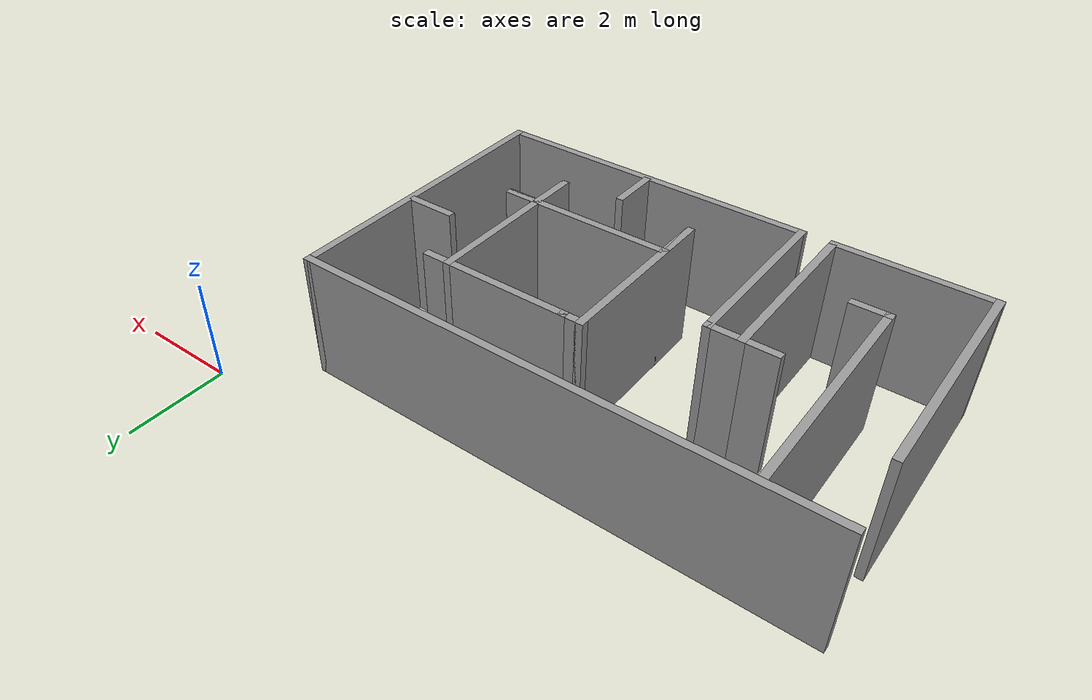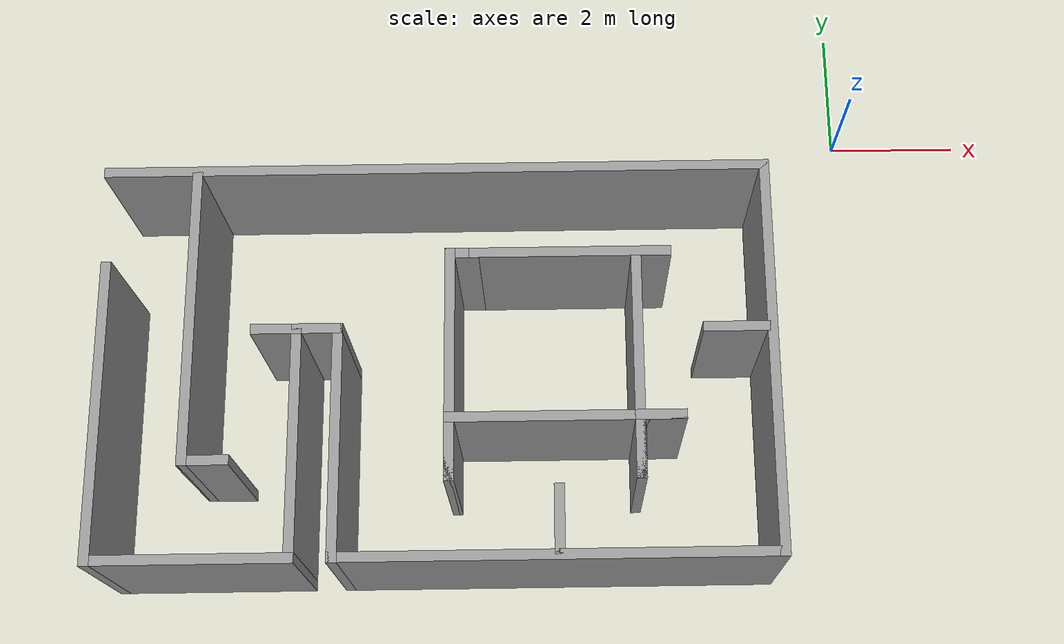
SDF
<?xml version='1.0'?>
<sdf version='1.7'>
  <model name='inroom'>
    <pose>-5.7025 -3.6025 0 0 -0 0</pose>
    <link name='Wall_1'>
      <collision name='Wall_1_Collision'>
        <geometry>
          <box>
            <size>10 0.15 2.5</size>
          </box>
        </geometry>
        <pose>0 0 1.25 0 -0 0</pose>
      </collision>
      <visual name='Wall_1_Visual'>
        <pose>0 0 1.25 0 -0 0</pose>
        <geometry>
          <box>
            <size>10 0.15 2.5</size>
          </box>
        </geometry>
        <material>
          <script>
            <uri>file://media/materials/scripts/gazebo.material</uri>
            <name>Gazebo/Grey</name>
          </script>
          <ambient>1 1 1 1</ambient>
        </material>
        <meta>
          <layer>0</layer>
        </meta>
      </visual>
      <pose>-0.7025 2.3225 0 0 -0 0</pose>
    </link>
    <link name='Wall_10'>
      <collision name='Wall_10_Collision'>
        <geometry>
          <box>
            <size>4.5 0.15 2.5</size>
          </box>
        </geometry>
        <pose>0 0 1.25 0 -0 0</pose>
      </collision>
      <visual name='Wall_10_Visual'>
        <pose>0 0 1.25 0 -0 0</pose>
        <geometry>
          <box>
            <size>4.5 0.15 2.5</size>
          </box>
        </geometry>
        <material>
          <script>
            <uri>file://media/materials/scripts/gazebo.material</uri>
            <name>Gazebo/Grey</name>
          </script>
          <ambient>1 1 1 1</ambient>
        </material>
        <meta>
          <layer>0</layer>
        </meta>
      </visual>
      <pose>-4.2975 0.0575 0 0 -0 -1.5708</pose>
    </link>
    <link name='Wall_11'>
      <collision name='Wall_11_Collision'>
        <geometry>
          <box>
            <size>0.75 0.15 2.5</size>
          </box>
        </geometry>
        <pose>0 0 1.25 0 -0 0</pose>
      </collision>
      <visual name='Wall_11_Visual'>
        <pose>0 0 1.25 0 -0 0</pose>
        <geometry>
          <box>
            <size>0.75 0.15 2.5</size>
          </box>
        </geometry>
        <material>
          <script>
            <uri>file://media/materials/scripts/gazebo.material</uri>
            <name>Gazebo/Grey</name>
          </script>
          <ambient>1 1 1 1</ambient>
        </material>
        <meta>
          <layer>0</layer>
        </meta>
      </visual>
      <pose>-3.9975 -2.1175 0 0 -0 0</pose>
    </link>
    <link name='Wall_13'>
      <collision name='Wall_13_Collision'>
        <geometry>
          <box>
            <size>0.75 0.15 2.5</size>
          </box>
        </geometry>
        <pose>0 0 1.25 0 -0 0</pose>
      </collision>
      <visual name='Wall_13_Visual'>
        <pose>0 0 1.25 0 -0 0</pose>
        <geometry>
          <box>
            <size>0.75 0.15 2.5</size>
          </box>
        </geometry>
        <material>
          <script>
            <uri>file://media/materials/scripts/gazebo.material</uri>
            <name>Gazebo/Grey</name>
          </script>
          <ambient>1 1 1 1</ambient>
        </material>
        <meta>
          <layer>0</layer>
        </meta>
      </visual>
      <pose>-3.0275 -0.1775 0 0 -0 3.14159</pose>
    </link>
    <link name='Wall_15'>
      <collision name='Wall_15_Collision'>
        <geometry>
          <box>
            <size>1 0.15 2.5</size>
          </box>
        </geometry>
        <pose>0 0 1.25 0 -0 0</pose>
      </collision>
      <visual name='Wall_15_Visual'>
        <pose>0 0 1.25 0 -0 0</pose>
        <geometry>
          <box>
            <size>1 0.15 2.5</size>
          </box>
        </geometry>
        <material>
          <script>
            <uri>file://media/materials/scripts/gazebo.material</uri>
            <name>Gazebo/Grey</name>
          </script>
          <ambient>1 1 1 1</ambient>
        </material>
        <meta>
          <layer>0</layer>
        </meta>
      </visual>
      <pose>1.0725 -3.0225 0 0 -0 1.5708</pose>
    </link>
    <link name='Wall_17'>
      <collision name='Wall_17_Collision'>
        <geometry>
          <box>
            <size>3 0.15 2.5</size>
          </box>
        </geometry>
        <pose>0 0 1.25 0 -0 0</pose>
      </collision>
      <visual name='Wall_17_Visual'>
        <pose>0 0 1.25 0 -0 0</pose>
        <geometry>
          <box>
            <size>3 0.15 2.5</size>
          </box>
        </geometry>
        <material>
          <script>
            <uri>file://media/materials/scripts/gazebo.material</uri>
            <name>Gazebo/Grey</name>
          </script>
          <ambient>1 1 1 1</ambient>
        </material>
        <meta>
          <layer>0</layer>
        </meta>
      </visual>
      <pose>1.2775 0.9625 0 0 -0 3.14159</pose>
    </link>
    <link name='Wall_18'>
      <collision name='Wall_18_Collision'>
        <geometry>
          <box>
            <size>0.5 0.15 2.5</size>
          </box>
        </geometry>
        <pose>0 0 1.25 0 -0 0</pose>
      </collision>
      <visual name='Wall_18_Visual'>
        <pose>0 0 1.25 0 -0 0</pose>
        <geometry>
          <box>
            <size>0.5 0.15 2.5</size>
          </box>
        </geometry>
        <material>
          <script>
            <uri>file://media/materials/scripts/gazebo.material</uri>
            <name>Gazebo/Grey</name>
          </script>
          <ambient>1 1 1 1</ambient>
        </material>
        <meta>
          <layer>0</layer>
        </meta>
      </visual>
      <pose>-0.3225 0.9625 0 0 -0 3.14159</pose>
    </link>
    <link name='Wall_19'>
      <collision name='Wall_19_Collision'>
        <geometry>
          <box>
            <size>3.5 0.15 2.5</size>
          </box>
        </geometry>
        <pose>0 0 1.25 0 -0 0</pose>
      </collision>
      <visual name='Wall_19_Visual'>
        <pose>0 0 1.25 0 -0 0</pose>
        <geometry>
          <box>
            <size>3.5 0.15 2.5</size>
          </box>
        </geometry>
        <material>
          <script>
            <uri>file://media/materials/scripts/gazebo.material</uri>
            <name>Gazebo/Grey</name>
          </script>
          <ambient>1 1 1 1</ambient>
        </material>
        <meta>
          <layer>0</layer>
        </meta>
      </visual>
      <pose>-0.497499 -0.7125 0 0 -0 -1.5708</pose>
    </link>
    <link name='Wall_2'>
      <collision name='Wall_2_Collision'>
        <geometry>
          <box>
            <size>6 0.15 2.5</size>
          </box>
        </geometry>
        <pose>0 0 1.25 0 -0 0</pose>
      </collision>
      <visual name='Wall_2_Visual'>
        <pose>0 0 1.25 0 -0 0</pose>
        <geometry>
          <box>
            <size>6 0.15 2.5</size>
          </box>
        </geometry>
        <material>
          <script>
            <uri>file://media/materials/scripts/gazebo.material</uri>
            <name>Gazebo/Grey</name>
          </script>
          <ambient>1 1 1 1</ambient>
        </material>
        <meta>
          <layer>0</layer>
        </meta>
      </visual>
      <pose>4.2225 -0.6025 0 0 -0 -1.5708</pose>
    </link>
    <link name='Wall_20'>
      <collision name='Wall_20_Collision'>
        <geometry>
          <box>
            <size>1 0.15 2.5</size>
          </box>
        </geometry>
        <pose>0 0 1.25 0 -0 0</pose>
      </collision>
      <visual name='Wall_20_Visual'>
        <pose>0 0 1.25 0 -0 0</pose>
        <geometry>
          <box>
            <size>1 0.15 2.5</size>
          </box>
        </geometry>
        <material>
          <script>
            <uri>file://media/materials/scripts/gazebo.material</uri>
            <name>Gazebo/Grey</name>
          </script>
          <ambient>1 1 1 1</ambient>
        </material>
        <meta>
          <layer>0</layer>
        </meta>
      </visual>
      <pose>-0.497499 -1.9625 0 0 -0 1.5708</pose>
    </link>
    <link name='Wall_21'>
      <collision name='Wall_21_Collision'>
        <geometry>
          <box>
            <size>3.5 0.15 2.5</size>
          </box>
        </geometry>
        <pose>0 0 1.25 0 -0 0</pose>
      </collision>
      <visual name='Wall_21_Visual'>
        <pose>0 0 1.25 0 -0 0</pose>
        <geometry>
          <box>
            <size>3.5 0.15 2.5</size>
          </box>
        </geometry>
        <material>
          <script>
            <uri>file://media/materials/scripts/gazebo.material</uri>
            <name>Gazebo/Grey</name>
          </script>
          <ambient>1 1 1 1</ambient>
        </material>
        <meta>
          <layer>0</layer>
        </meta>
      </visual>
      <pose>1.1775 -1.5375 0 0 -0 0</pose>
    </link>
    <link name='Wall_22'>
      <collision name='Wall_22_Collision'>
        <geometry>
          <box>
            <size>0.75 0.15 2.5</size>
          </box>
        </geometry>
        <pose>0 0 1.25 0 -0 0</pose>
      </collision>
      <visual name='Wall_22_Visual'>
        <pose>0 0 1.25 0 -0 0</pose>
        <geometry>
          <box>
            <size>0.75 0.15 2.5</size>
          </box>
        </geometry>
        <material>
          <script>
            <uri>file://media/materials/scripts/gazebo.material</uri>
            <name>Gazebo/Grey</name>
          </script>
          <ambient>1 1 1 1</ambient>
        </material>
        <meta>
          <layer>0</layer>
        </meta>
      </visual>
      <pose>2.5525 -1.5375 0 0 -0 3.14159</pose>
    </link>
    <link name='Wall_23'>
      <collision name='Wall_23_Collision'>
        <geometry>
          <box>
            <size>1 0.15 2.5</size>
          </box>
        </geometry>
        <pose>0 0 1.25 0 -0 0</pose>
      </collision>
      <visual name='Wall_23_Visual'>
        <pose>0 0 1.25 0 -0 0</pose>
        <geometry>
          <box>
            <size>1 0.15 2.5</size>
          </box>
        </geometry>
        <material>
          <script>
            <uri>file://media/materials/scripts/gazebo.material</uri>
            <name>Gazebo/Grey</name>
          </script>
          <ambient>1 1 1 1</ambient>
        </material>
        <meta>
          <layer>0</layer>
        </meta>
      </visual>
      <pose>2.2525 -1.9625 0 0 -0 -1.5708</pose>
    </link>
    <link name='Wall_24'>
      <collision name='Wall_24_Collision'>
        <geometry>
          <box>
            <size>3.5 0.15 2.5</size>
          </box>
        </geometry>
        <pose>0 0 1.25 0 -0 0</pose>
      </collision>
      <visual name='Wall_24_Visual'>
        <pose>0 0 1.25 0 -0 0</pose>
        <geometry>
          <box>
            <size>3.5 0.15 2.5</size>
          </box>
        </geometry>
        <material>
          <script>
            <uri>file://media/materials/scripts/gazebo.material</uri>
            <name>Gazebo/Grey</name>
          </script>
          <ambient>1 1 1 1</ambient>
        </material>
        <meta>
          <layer>0</layer>
        </meta>
      </visual>
      <pose>2.2525 -0.7125 0 0 -0 1.5708</pose>
    </link>
    <link name='Wall_26'>
      <collision name='Wall_26_Collision'>
        <geometry>
          <box>
            <size>1 0.15 2.5</size>
          </box>
        </geometry>
        <pose>0 0 1.25 0 -0 0</pose>
      </collision>
      <visual name='Wall_26_Visual'>
        <pose>0 0 1.25 0 -0 0</pose>
        <geometry>
          <box>
            <size>1 0.15 2.5</size>
          </box>
        </geometry>
        <material>
          <script>
            <uri>file://media/materials/scripts/gazebo.material</uri>
            <name>Gazebo/Grey</name>
          </script>
          <ambient>1 1 1 1</ambient>
        </material>
        <meta>
          <layer>0</layer>
        </meta>
      </visual>
      <pose>3.7075 -0.2275 0 0 -0 3.14159</pose>
    </link>
    <link name='Wall_3'>
      <collision name='Wall_3_Collision'>
        <geometry>
          <box>
            <size>6.5 0.15 2.5</size>
          </box>
        </geometry>
        <pose>0 0 1.25 0 -0 0</pose>
      </collision>
      <visual name='Wall_3_Visual'>
        <pose>0 0 1.25 0 -0 0</pose>
        <geometry>
          <box>
            <size>6.5 0.15 2.5</size>
          </box>
        </geometry>
        <material>
          <script>
            <uri>file://media/materials/scripts/gazebo.material</uri>
            <name>Gazebo/Grey</name>
          </script>
          <ambient>1 1 1 1</ambient>
        </material>
        <meta>
          <layer>0</layer>
        </meta>
      </visual>
      <pose>1.0475 -3.5275 0 0 -0 3.14159</pose>
    </link>
    <link name='Wall_4'>
      <collision name='Wall_4_Collision'>
        <geometry>
          <box>
            <size>3.5 0.15 2.5</size>
          </box>
        </geometry>
        <pose>0 0 1.25 0 -0 0</pose>
      </collision>
      <visual name='Wall_4_Visual'>
        <pose>0 0 1.25 0 -0 0</pose>
        <geometry>
          <box>
            <size>3.5 0.15 2.5</size>
          </box>
        </geometry>
        <material>
          <script>
            <uri>file://media/materials/scripts/gazebo.material</uri>
            <name>Gazebo/Grey</name>
          </script>
          <ambient>1 1 1 1</ambient>
        </material>
        <meta>
          <layer>0</layer>
        </meta>
      </visual>
      <pose>-2.1275 -1.8525 0 0 -0 1.5708</pose>
    </link>
    <link name='Wall_5'>
      <collision name='Wall_5_Collision'>
        <geometry>
          <box>
            <size>0.75 0.15 2.5</size>
          </box>
        </geometry>
        <pose>0 0 1.25 0 -0 0</pose>
      </collision>
      <visual name='Wall_5_Visual'>
        <pose>0 0 1.25 0 -0 0</pose>
        <geometry>
          <box>
            <size>0.75 0.15 2.5</size>
          </box>
        </geometry>
        <material>
          <script>
            <uri>file://media/materials/scripts/gazebo.material</uri>
            <name>Gazebo/Grey</name>
          </script>
          <ambient>1 1 1 1</ambient>
        </material>
        <meta>
          <layer>0</layer>
        </meta>
      </visual>
      <pose>-2.4275 -0.1775 0 0 -0 3.14159</pose>
    </link>
    <link name='Wall_6'>
      <collision name='Wall_6_Collision'>
        <geometry>
          <box>
            <size>3.5 0.15 2.5</size>
          </box>
        </geometry>
        <pose>0 0 1.25 0 -0 0</pose>
      </collision>
      <visual name='Wall_6_Visual'>
        <pose>0 0 1.25 0 -0 0</pose>
        <geometry>
          <box>
            <size>3.5 0.15 2.5</size>
          </box>
        </geometry>
        <material>
          <script>
            <uri>file://media/materials/scripts/gazebo.material</uri>
            <name>Gazebo/Grey</name>
          </script>
          <ambient>1 1 1 1</ambient>
        </material>
        <meta>
          <layer>0</layer>
        </meta>
      </visual>
      <pose>-2.7275 -1.8525 0 0 -0 -1.5708</pose>
    </link>
    <link name='Wall_7'>
      <collision name='Wall_7_Collision'>
        <geometry>
          <box>
            <size>3 0.15 2.5</size>
          </box>
        </geometry>
        <pose>0 0 1.25 0 -0 0</pose>
      </collision>
      <visual name='Wall_7_Visual'>
        <pose>0 0 1.25 0 -0 0</pose>
        <geometry>
          <box>
            <size>3 0.15 2.5</size>
          </box>
        </geometry>
        <material>
          <script>
            <uri>file://media/materials/scripts/gazebo.material</uri>
            <name>Gazebo/Grey</name>
          </script>
          <ambient>1 1 1 1</ambient>
        </material>
        <meta>
          <layer>0</layer>
        </meta>
      </visual>
      <pose>-4.1525 -3.5275 0 0 -0 3.14159</pose>
    </link>
    <link name='Wall_8'>
      <collision name='Wall_8_Collision'>
        <geometry>
          <box>
            <size>4.5 0.15 2.5</size>
          </box>
        </geometry>
        <pose>0 0 1.25 0 -0 0</pose>
      </collision>
      <visual name='Wall_8_Visual'>
        <pose>0 0 1.25 0 -0 0</pose>
        <geometry>
          <box>
            <size>4.5 0.15 2.5</size>
          </box>
        </geometry>
        <material>
          <script>
            <uri>file://media/materials/scripts/gazebo.material</uri>
            <name>Gazebo/Grey</name>
          </script>
          <ambient>1 1 1 1</ambient>
        </material>
        <meta>
          <layer>0</layer>
        </meta>
      </visual>
      <pose>-5.5775 -1.3525 0 0 -0 1.5708</pose>
    </link>
    <static>1</static>
  </model>
</sdf>
